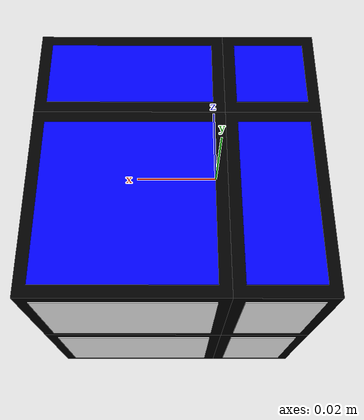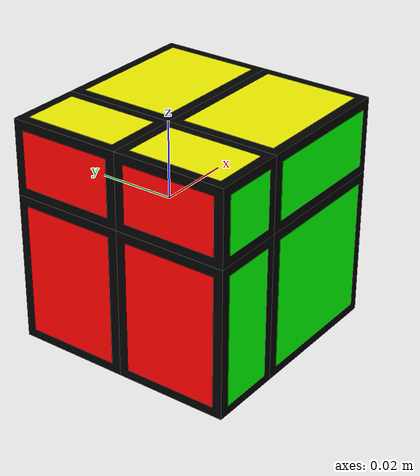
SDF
<?xml version="1.0" ?>
<sdf version="1.7">
	<model name="mirror_cube_2x2">
		<link name="center"/>
		<link name="cubie_0_0_0">
			<pose>-0.01 -0.015 -0.02 0.0 0.0 0.0</pose>
			<inertial>
				<mass>9.359999999999998e-06</mass>
				<inertia>
					<ixx>1.9499999999999997e-09</ixx>
					<ixy>0.0</ixy>
					<ixz>0.0</ixz>
					<iyy>1.5599999999999998e-09</iyy>
					<iyz>0.0</iyz>
					<izz>1.0139999999999998e-09</izz>
				</inertia>
			</inertial>
			<collision name="collision">
				<geometry>
					<box>
						<size>0.02 0.03 0.04</size>
					</box>
				</geometry>
			</collision>
			<visual name="black">
				<geometry>
					<box>
						<size>0.02 0.03 0.04</size>
					</box>
				</geometry>
				<material>
					<diffuse>0 0 0 1</diffuse>
				</material>
			</visual>
			<visual name="red">
				<pose>-0.01 0.0 0.0 0.0 0.0 0.0</pose>
				<geometry>
					<box>
						<size>0.00015 0.025 0.035</size>
					</box>
				</geometry>
				<material>
					<diffuse>1 0 0 1</diffuse>
				</material>
			</visual>
			<visual name="green">
				<pose>0.0 -0.015 0.0 0.0 0.0 0.0</pose>
				<geometry>
					<box>
						<size>0.015 0.00025 0.035</size>
					</box>
				</geometry>
				<material>
					<diffuse>0 1 0 1</diffuse>
				</material>
			</visual>
			<visual name="white">
				<pose>0.0 0.0 -0.02 0.0 0.0 0.0</pose>
				<geometry>
					<box>
						<size>0.015 0.025 0.00035</size>
					</box>
				</geometry>
				<material>
					<diffuse>1 1 1 1</diffuse>
				</material>
			</visual>
		</link>
		<joint name="ball_0_0_0" type="ball">
			<pose>0.01 0.015 0.02 -0.0 -0.0 -0.0</pose>
			<parent>center</parent>
			<child>cubie_0_0_0</child>
			<axis>
				<dynamics>
					<damping>0.1</damping>
				</dynamics>
				<limit>
					<effort>0</effort>
				</limit>
			</axis>
		</joint>
		<link name="cubie_0_0_1">
			<pose>-0.01 -0.015 0.009999999999999998 0.0 0.0 0.0</pose>
			<inertial>
				<mass>4.679999999999999e-06</mass>
				<inertia>
					<ixx>5.069999999999999e-10</ixx>
					<ixy>0.0</ixy>
					<ixz>0.0</ixz>
					<iyy>3.119999999999999e-10</iyy>
					<iyz>0.0</iyz>
					<izz>5.069999999999999e-10</izz>
				</inertia>
			</inertial>
			<collision name="collision">
				<geometry>
					<box>
						<size>0.02 0.03 0.019999999999999997</size>
					</box>
				</geometry>
			</collision>
			<visual name="black">
				<geometry>
					<box>
						<size>0.02 0.03 0.019999999999999997</size>
					</box>
				</geometry>
				<material>
					<diffuse>0 0 0 1</diffuse>
				</material>
			</visual>
			<visual name="red">
				<pose>-0.01 0.0 0.0 0.0 0.0 0.0</pose>
				<geometry>
					<box>
						<size>0.00015 0.025 0.015</size>
					</box>
				</geometry>
				<material>
					<diffuse>1 0 0 1</diffuse>
				</material>
			</visual>
			<visual name="green">
				<pose>0.0 -0.015 0.0 0.0 0.0 0.0</pose>
				<geometry>
					<box>
						<size>0.015 0.00025 0.015</size>
					</box>
				</geometry>
				<material>
					<diffuse>0 1 0 1</diffuse>
				</material>
			</visual>
			<visual name="yellow">
				<pose>0.0 0.0 0.009999999999999998 0.0 0.0 0.0</pose>
				<geometry>
					<box>
						<size>0.015 0.025 0.00015</size>
					</box>
				</geometry>
				<material>
					<diffuse>1 1 0 1</diffuse>
				</material>
			</visual>
		</link>
		<joint name="ball_0_0_1" type="ball">
			<pose>0.01 0.015 -0.009999999999999998 -0.0 -0.0 -0.0</pose>
			<parent>center</parent>
			<child>cubie_0_0_1</child>
			<axis>
				<dynamics>
					<damping>0.1</damping>
				</dynamics>
				<limit>
					<effort>0</effort>
				</limit>
			</axis>
		</joint>
		<link name="cubie_0_1_0">
			<pose>-0.01 0.015 -0.02 0.0 0.0 0.0</pose>
			<inertial>
				<mass>9.359999999999998e-06</mass>
				<inertia>
					<ixx>1.9499999999999997e-09</ixx>
					<ixy>0.0</ixy>
					<ixz>0.0</ixz>
					<iyy>1.5599999999999998e-09</iyy>
					<iyz>0.0</iyz>
					<izz>1.0139999999999998e-09</izz>
				</inertia>
			</inertial>
			<collision name="collision">
				<geometry>
					<box>
						<size>0.02 0.03 0.04</size>
					</box>
				</geometry>
			</collision>
			<visual name="black">
				<geometry>
					<box>
						<size>0.02 0.03 0.04</size>
					</box>
				</geometry>
				<material>
					<diffuse>0 0 0 1</diffuse>
				</material>
			</visual>
			<visual name="red">
				<pose>-0.01 0.0 0.0 0.0 0.0 0.0</pose>
				<geometry>
					<box>
						<size>0.00015 0.025 0.035</size>
					</box>
				</geometry>
				<material>
					<diffuse>1 0 0 1</diffuse>
				</material>
			</visual>
			<visual name="blue">
				<pose>0.0 0.015 0.0 0.0 0.0 0.0</pose>
				<geometry>
					<box>
						<size>0.015 0.00025 0.035</size>
					</box>
				</geometry>
				<material>
					<diffuse>0 0 1 1</diffuse>
				</material>
			</visual>
			<visual name="white">
				<pose>0.0 0.0 -0.02 0.0 0.0 0.0</pose>
				<geometry>
					<box>
						<size>0.015 0.025 0.00035</size>
					</box>
				</geometry>
				<material>
					<diffuse>1 1 1 1</diffuse>
				</material>
			</visual>
		</link>
		<joint name="ball_0_1_0" type="ball">
			<pose>0.01 -0.015 0.02 -0.0 -0.0 -0.0</pose>
			<parent>center</parent>
			<child>cubie_0_1_0</child>
			<axis>
				<dynamics>
					<damping>0.1</damping>
				</dynamics>
				<limit>
					<effort>0</effort>
				</limit>
			</axis>
		</joint>
		<link name="cubie_0_1_1">
			<pose>-0.01 0.015 0.009999999999999998 0.0 0.0 0.0</pose>
			<inertial>
				<mass>4.679999999999999e-06</mass>
				<inertia>
					<ixx>5.069999999999999e-10</ixx>
					<ixy>0.0</ixy>
					<ixz>0.0</ixz>
					<iyy>3.119999999999999e-10</iyy>
					<iyz>0.0</iyz>
					<izz>5.069999999999999e-10</izz>
				</inertia>
			</inertial>
			<collision name="collision">
				<geometry>
					<box>
						<size>0.02 0.03 0.019999999999999997</size>
					</box>
				</geometry>
			</collision>
			<visual name="black">
				<geometry>
					<box>
						<size>0.02 0.03 0.019999999999999997</size>
					</box>
				</geometry>
				<material>
					<diffuse>0 0 0 1</diffuse>
				</material>
			</visual>
			<visual name="red">
				<pose>-0.01 0.0 0.0 0.0 0.0 0.0</pose>
				<geometry>
					<box>
						<size>0.00015 0.025 0.015</size>
					</box>
				</geometry>
				<material>
					<diffuse>1 0 0 1</diffuse>
				</material>
			</visual>
			<visual name="blue">
				<pose>0.0 0.015 0.0 0.0 0.0 0.0</pose>
				<geometry>
					<box>
						<size>0.015 0.00025 0.015</size>
					</box>
				</geometry>
				<material>
					<diffuse>0 0 1 1</diffuse>
				</material>
			</visual>
			<visual name="yellow">
				<pose>0.0 0.0 0.009999999999999998 0.0 0.0 0.0</pose>
				<geometry>
					<box>
						<size>0.015 0.025 0.00015</size>
					</box>
				</geometry>
				<material>
					<diffuse>1 1 0 1</diffuse>
				</material>
			</visual>
		</link>
		<joint name="ball_0_1_1" type="ball">
			<pose>0.01 -0.015 -0.009999999999999998 -0.0 -0.0 -0.0</pose>
			<parent>center</parent>
			<child>cubie_0_1_1</child>
			<axis>
				<dynamics>
					<damping>0.1</damping>
				</dynamics>
				<limit>
					<effort>0</effort>
				</limit>
			</axis>
		</joint>
		<link name="cubie_1_0_0">
			<pose>0.019999999999999997 -0.015 -0.02 0.0 0.0 0.0</pose>
			<inertial>
				<mass>1.8719999999999997e-05</mass>
				<inertia>
					<ixx>3.899999999999999e-09</ixx>
					<ixy>0.0</ixy>
					<ixz>0.0</ixz>
					<iyy>4.9919999999999985e-09</iyy>
					<iyz>0.0</iyz>
					<izz>3.8999999999999985e-09</izz>
				</inertia>
			</inertial>
			<collision name="collision">
				<geometry>
					<box>
						<size>0.039999999999999994 0.03 0.04</size>
					</box>
				</geometry>
			</collision>
			<visual name="black">
				<geometry>
					<box>
						<size>0.039999999999999994 0.03 0.04</size>
					</box>
				</geometry>
				<material>
					<diffuse>0 0 0 1</diffuse>
				</material>
			</visual>
			<visual name="orange">
				<pose>0.019999999999999997 0.0 0.0 0.0 0.0 0.0</pose>
				<geometry>
					<box>
						<size>0.00035 0.025 0.035</size>
					</box>
				</geometry>
				<material>
					<diffuse>1.0 0.5 0.0 1.0</diffuse>
				</material>
			</visual>
			<visual name="green">
				<pose>0.0 -0.015 0.0 0.0 0.0 0.0</pose>
				<geometry>
					<box>
						<size>0.035 0.00025 0.035</size>
					</box>
				</geometry>
				<material>
					<diffuse>0 1 0 1</diffuse>
				</material>
			</visual>
			<visual name="white">
				<pose>0.0 0.0 -0.02 0.0 0.0 0.0</pose>
				<geometry>
					<box>
						<size>0.035 0.025 0.00035</size>
					</box>
				</geometry>
				<material>
					<diffuse>1 1 1 1</diffuse>
				</material>
			</visual>
		</link>
		<joint name="ball_1_0_0" type="ball">
			<pose>-0.019999999999999997 0.015 0.02 -0.0 -0.0 -0.0</pose>
			<parent>center</parent>
			<child>cubie_1_0_0</child>
			<axis>
				<dynamics>
					<damping>0.1</damping>
				</dynamics>
				<limit>
					<effort>0</effort>
				</limit>
			</axis>
		</joint>
		<link name="cubie_1_0_1">
			<pose>0.019999999999999997 -0.015 0.009999999999999998 0.0 0.0 0.0</pose>
			<inertial>
				<mass>9.359999999999997e-06</mass>
				<inertia>
					<ixx>1.0139999999999996e-09</ixx>
					<ixy>0.0</ixy>
					<ixz>0.0</ixz>
					<iyy>1.5599999999999987e-09</iyy>
					<iyz>0.0</iyz>
					<izz>1.949999999999999e-09</izz>
				</inertia>
			</inertial>
			<collision name="collision">
				<geometry>
					<box>
						<size>0.039999999999999994 0.03 0.019999999999999997</size>
					</box>
				</geometry>
			</collision>
			<visual name="black">
				<geometry>
					<box>
						<size>0.039999999999999994 0.03 0.019999999999999997</size>
					</box>
				</geometry>
				<material>
					<diffuse>0 0 0 1</diffuse>
				</material>
			</visual>
			<visual name="orange">
				<pose>0.019999999999999997 0.0 0.0 0.0 0.0 0.0</pose>
				<geometry>
					<box>
						<size>0.00035 0.025 0.015</size>
					</box>
				</geometry>
				<material>
					<diffuse>1.0 0.5 0.0 1.0</diffuse>
				</material>
			</visual>
			<visual name="green">
				<pose>0.0 -0.015 0.0 0.0 0.0 0.0</pose>
				<geometry>
					<box>
						<size>0.035 0.00025 0.015</size>
					</box>
				</geometry>
				<material>
					<diffuse>0 1 0 1</diffuse>
				</material>
			</visual>
			<visual name="yellow">
				<pose>0.0 0.0 0.009999999999999998 0.0 0.0 0.0</pose>
				<geometry>
					<box>
						<size>0.035 0.025 0.00015</size>
					</box>
				</geometry>
				<material>
					<diffuse>1 1 0 1</diffuse>
				</material>
			</visual>
		</link>
		<joint name="ball_1_0_1" type="ball">
			<pose>-0.019999999999999997 0.015 -0.009999999999999998 -0.0 -0.0 -0.0</pose>
			<parent>center</parent>
			<child>cubie_1_0_1</child>
			<axis>
				<dynamics>
					<damping>0.1</damping>
				</dynamics>
				<limit>
					<effort>0</effort>
				</limit>
			</axis>
		</joint>
		<link name="cubie_1_1_0">
			<pose>0.019999999999999997 0.015 -0.02 0.0 0.0 0.0</pose>
			<inertial>
				<mass>1.8719999999999997e-05</mass>
				<inertia>
					<ixx>3.899999999999999e-09</ixx>
					<ixy>0.0</ixy>
					<ixz>0.0</ixz>
					<iyy>4.9919999999999985e-09</iyy>
					<iyz>0.0</iyz>
					<izz>3.8999999999999985e-09</izz>
				</inertia>
			</inertial>
			<collision name="collision">
				<geometry>
					<box>
						<size>0.039999999999999994 0.03 0.04</size>
					</box>
				</geometry>
			</collision>
			<visual name="black">
				<geometry>
					<box>
						<size>0.039999999999999994 0.03 0.04</size>
					</box>
				</geometry>
				<material>
					<diffuse>0 0 0 1</diffuse>
				</material>
			</visual>
			<visual name="orange">
				<pose>0.019999999999999997 0.0 0.0 0.0 0.0 0.0</pose>
				<geometry>
					<box>
						<size>0.00035 0.025 0.035</size>
					</box>
				</geometry>
				<material>
					<diffuse>1.0 0.5 0.0 1.0</diffuse>
				</material>
			</visual>
			<visual name="blue">
				<pose>0.0 0.015 0.0 0.0 0.0 0.0</pose>
				<geometry>
					<box>
						<size>0.035 0.00025 0.035</size>
					</box>
				</geometry>
				<material>
					<diffuse>0 0 1 1</diffuse>
				</material>
			</visual>
			<visual name="white">
				<pose>0.0 0.0 -0.02 0.0 0.0 0.0</pose>
				<geometry>
					<box>
						<size>0.035 0.025 0.00035</size>
					</box>
				</geometry>
				<material>
					<diffuse>1 1 1 1</diffuse>
				</material>
			</visual>
		</link>
		<joint name="ball_1_1_0" type="ball">
			<pose>-0.019999999999999997 -0.015 0.02 -0.0 -0.0 -0.0</pose>
			<parent>center</parent>
			<child>cubie_1_1_0</child>
			<axis>
				<dynamics>
					<damping>0.1</damping>
				</dynamics>
				<limit>
					<effort>0</effort>
				</limit>
			</axis>
		</joint>
		<link name="cubie_1_1_1">
			<pose>0.019999999999999997 0.015 0.009999999999999998 0.0 0.0 0.0</pose>
			<inertial>
				<mass>9.359999999999997e-06</mass>
				<inertia>
					<ixx>1.0139999999999996e-09</ixx>
					<ixy>0.0</ixy>
					<ixz>0.0</ixz>
					<iyy>1.5599999999999987e-09</iyy>
					<iyz>0.0</iyz>
					<izz>1.949999999999999e-09</izz>
				</inertia>
			</inertial>
			<collision name="collision">
				<geometry>
					<box>
						<size>0.039999999999999994 0.03 0.019999999999999997</size>
					</box>
				</geometry>
			</collision>
			<visual name="black">
				<geometry>
					<box>
						<size>0.039999999999999994 0.03 0.019999999999999997</size>
					</box>
				</geometry>
				<material>
					<diffuse>0 0 0 1</diffuse>
				</material>
			</visual>
			<visual name="orange">
				<pose>0.019999999999999997 0.0 0.0 0.0 0.0 0.0</pose>
				<geometry>
					<box>
						<size>0.00035 0.025 0.015</size>
					</box>
				</geometry>
				<material>
					<diffuse>1.0 0.5 0.0 1.0</diffuse>
				</material>
			</visual>
			<visual name="blue">
				<pose>0.0 0.015 0.0 0.0 0.0 0.0</pose>
				<geometry>
					<box>
						<size>0.035 0.00025 0.015</size>
					</box>
				</geometry>
				<material>
					<diffuse>0 0 1 1</diffuse>
				</material>
			</visual>
			<visual name="yellow">
				<pose>0.0 0.0 0.009999999999999998 0.0 0.0 0.0</pose>
				<geometry>
					<box>
						<size>0.035 0.025 0.00015</size>
					</box>
				</geometry>
				<material>
					<diffuse>1 1 0 1</diffuse>
				</material>
			</visual>
		</link>
		<joint name="ball_1_1_1" type="ball">
			<pose>-0.019999999999999997 -0.015 -0.009999999999999998 -0.0 -0.0 -0.0</pose>
			<parent>center</parent>
			<child>cubie_1_1_1</child>
			<axis>
				<dynamics>
					<damping>0.1</damping>
				</dynamics>
				<limit>
					<effort>0</effort>
				</limit>
			</axis>
		</joint>
	</model>
</sdf>
